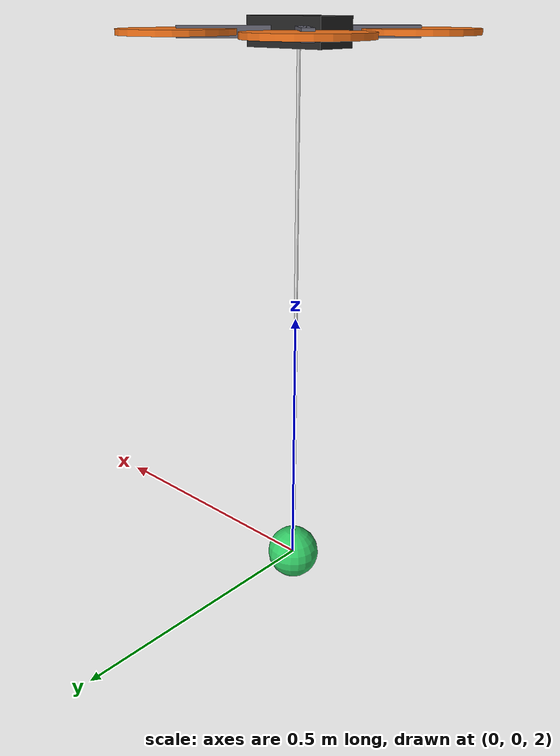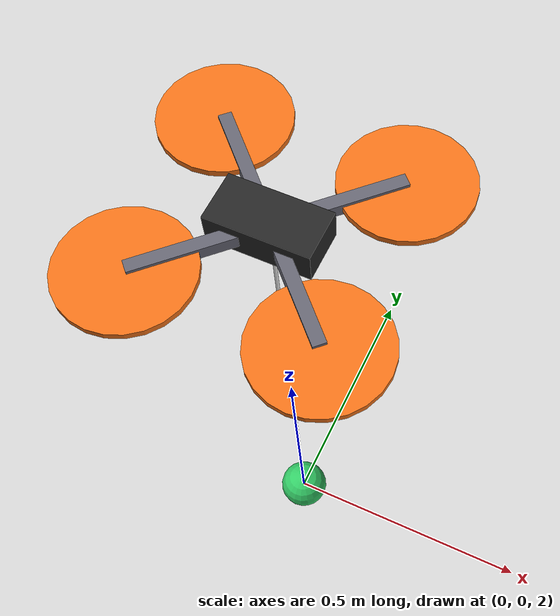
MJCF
<mujoco model="QuadPayload">
  <include file="scene.xml"/>
  <compiler angle="degree" coordinate="local" inertiafromgeom="false"/>

  <worldbody>
    <body name="quadrotor" pos="0 0 3" quat="1 0 0 0">
      <inertial pos="0 0 0" mass="0.75" diaginertia="0.0053 0.0049 0.0098"/>
      <joint name="root_joint" type="free"/>
      <!-- Body -->
      <geom name="geom" type="box" pos="0 0 0" size="0.08 0.04 0.025" rgba="0.15 0.15 0.15 1"/>
      <site name="end1" pos="0 0 0" type="sphere" size="0.01" rgba="0 0 0 0"/>
      <!-- Arms -->
      <geom name="rotor_arm_geom_0" type="box" pos="0 0 0"
        quat="0.92388 0 0 0.382683" size="0.2 0.01 0.01" rgba="0.4 0.4 0.45 1"/>
      <geom name="rotor_arm_geom_1" type="box" pos="0 0 0"
        quat="0.382683 0 0 0.92388" size="0.2 0.01 0.01" rgba="0.4 0.4 0.45 1"/>
      <geom name="rotor_arm_geom_2" type="box" pos="0 0 0"
        quat="-0.382683 0 0 0.92388" size="0.2 0.01 0.01" rgba="0.4 0.4 0.45 1"/>
      <geom name="rotor_arm_geom_3" type="box" pos="0 0 0"
        quat="-0.92388 0 0 0.382683" size="0.2 0.01 0.01" rgba="0.4 0.4 0.45 1"/>
      <!-- Propellers -->
      <geom name="rotor_prop_geom_0" type="cylinder" size="0.1 0.005"
        pos="0.14142 0.14142 0" rgba="0.95 0.45 0.1 1"/>
      <geom name="rotor_prop_geom_1" type="cylinder" size="0.1 0.005"
        pos="-0.14142 0.14142 0" rgba="0.95 0.45 0.1 1"/>
      <geom name="rotor_prop_geom_2" type="cylinder" size="0.1 0.005"
        pos="-0.14142 -0.14142 0" rgba="0.95 0.45 0.1 1"/>
      <geom name="rotor_prop_geom_3" type="cylinder" size="0.1 0.005"
        pos="0.14142 -0.14142 0" rgba="0.95 0.45 0.1 1"/>
      <!-- Actuator sites (invisible) -->
      <site name="site0" pos="0.14142 0.14142 0" size="0.005" rgba="0 0 0 0"/>
      <site name="site1" pos="-0.14142 0.14142 0" size="0.005" rgba="0 0 0 0"/>
      <site name="site2" pos="-0.14142 -0.14142 0" size="0.005" rgba="0 0 0 0"/>
      <site name="site3" pos="0.14142 -0.14142 0" size="0.005" rgba="0 0 0 0"/>
      <site name="quadrotor_thrust" pos="0 0 0" size="0.005" rgba="0 0 0 0"/>
      <site name="quadrotor_Mx" pos="0 0 0" size="0.005" rgba="0 0 0 0"/>
      <site name="quadrotor_My" pos="0 0 0" size="0.005" rgba="0 0 0 0"/>
      <site name="quadrotor_Mz" pos="0 0 0" size="0.005" rgba="0 0 0 0"/>
    </body>
    <!-- Payload -->
    <body name="payload" pos="0 0 2" quat="1 0 0 0">
      <inertial pos="0 0 0" mass="0.15" diaginertia="0.00015 0.00015 0.00015"/>
      <geom type="sphere" pos="0 0 0" size="0.05" rgba="0.2 0.8 0.4 1"/>
      <site name="end2" pos="0 0 0" type="sphere" size="0.01" rgba="0 0 0 0"/>
      <joint type="free"/>
    </body>
  </worldbody>

  <actuator>
    <motor ctrllimited="true" site="site0" ctrlrange="0 10" gear="0 0 1 0 0 -0.025"/>
    <motor ctrllimited="true" site="site1" ctrlrange="0 10" gear="0 0 1 0 0  0.025"/>
    <motor ctrllimited="true" site="site2" ctrlrange="0 10" gear="0 0 1 0 0 -0.025"/>
    <motor ctrllimited="true" site="site3" ctrlrange="0 10" gear="0 0 1 0 0  0.025"/>
    <motor ctrllimited="true" site="quadrotor_thrust" ctrlrange="0 40" gear="0 0 1 0 0 0"/>
    <motor ctrllimited="true" site="quadrotor_Mx" ctrlrange="-3 3" gear="0 0 0 1 0 0"/>
    <motor ctrllimited="true" site="quadrotor_My" ctrlrange="-3 3" gear="0 0 0 0 1 0"/>
    <motor ctrllimited="true" site="quadrotor_Mz" ctrlrange="-3 3" gear="0 0 0 0 0 1"/>
  </actuator>

  <tendon>
    <spatial limited="true" range="0 1.0" damping="0" stiffness="0" width="0.003"
      rgba="0.9 0.9 0.9 1">
      <site site="end1"/>
      <site site="end2"/>
    </spatial>
  </tendon>
</mujoco>

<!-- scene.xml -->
<mujoco>
  <compiler meshdir="asset" texturedir="asset"/>

  <statistic meansize=".05"/>

  <visual>
    <rgba haze="0.85 0.9 1.0 1"/>
    <quality shadowsize="4096"/>
    <map stiffness="700" shadowscale="0.5" fogstart="10" fogend="50" zfar="60" haze="0.0"/>
    <global offwidth="1920" offheight="1080"/>
  </visual>

  <asset>
    <texture type="skybox" builtin="gradient" rgb1="0.7 0.82 0.95" rgb2="0.35 0.45 0.55" width="512" height="512"/>
    <texture name="texplane" type="2d" builtin="checker" rgb1=".42 .45 .48" rgb2=".34 .37 .4"
      width="512" height="512" mark="cross" markrgb=".65 .65 .65"/>
    <material name="matplane" reflectance="0.15" texture="texplane" texrepeat="10 10" texuniform="true"/>
  </asset>

  <worldbody>
    <light diffuse=".65 .65 .65" specular="0.18 0.18 0.18" pos="0 0 3.0" dir="0 0 -1" castshadow="false"/>
    <light directional="true" diffuse=".9 .9 .9" specular="0.28 0.28 0.28" pos="2 2 5" dir="-0.2 -0.2 -1"/>
    <geom name="ground" type="plane" size="0 0 1" pos="0 0 0" material="matplane" condim="1"/>
  </worldbody>
</mujoco>
